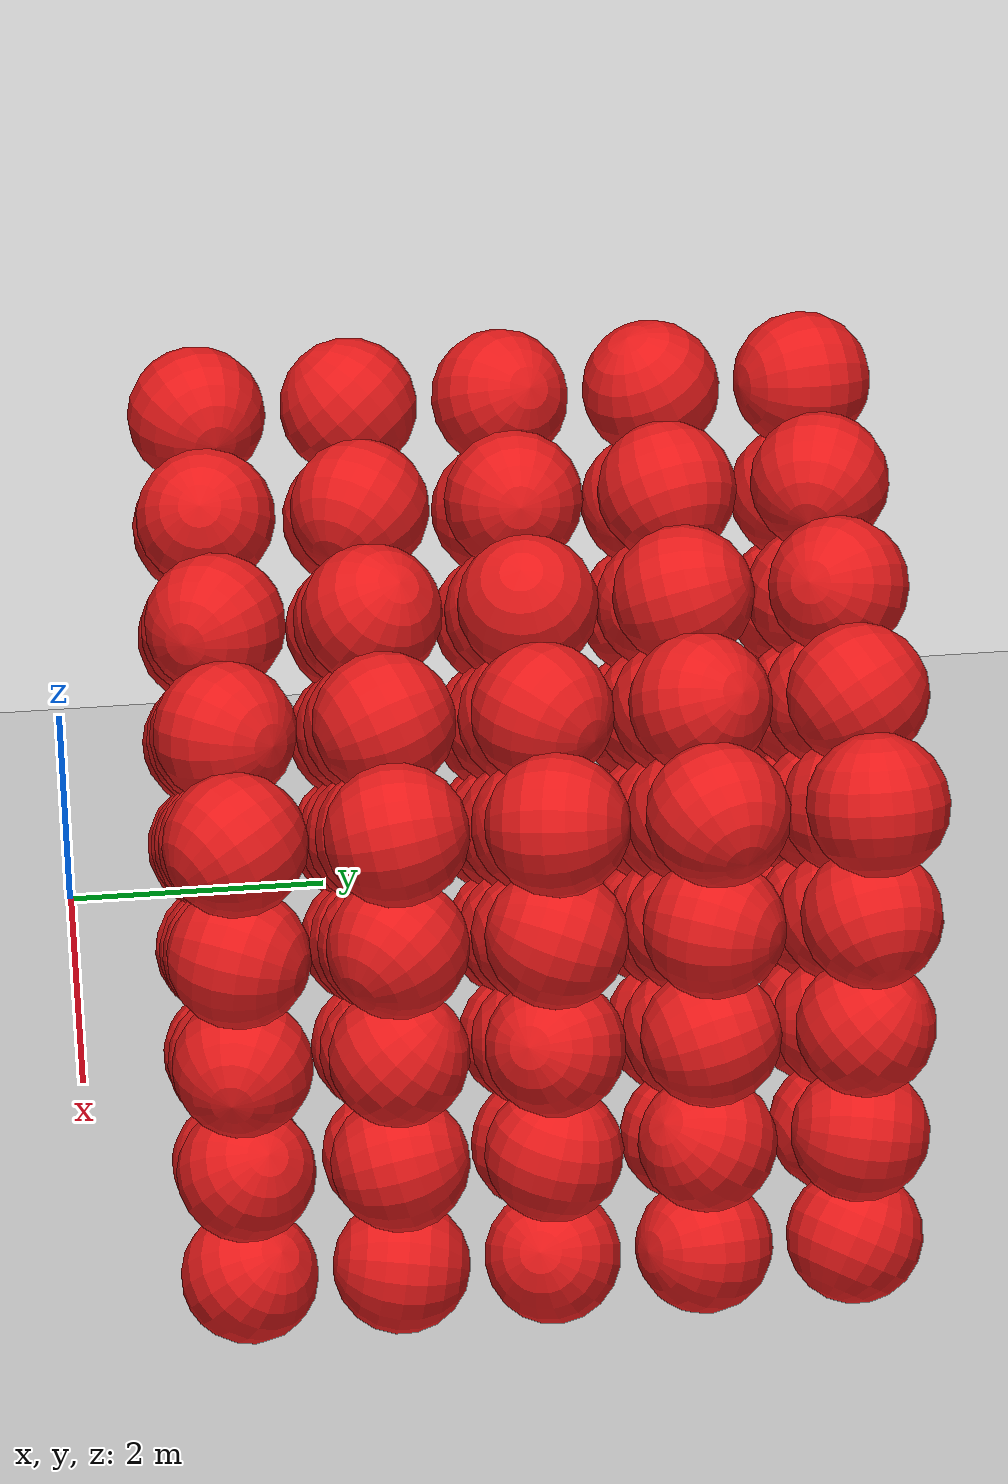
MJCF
<mujoco model="thousand">
    <compiler angle="degree"/>

    <option timestep="0.01" iterations="50" solver="PGS" jacobian="sparse" cone="elliptic" tolerance="1e-10"/>

    <size njmax="5000" nconmax="2000" nstack="1000000000"/>

    <default>
        <geom solimp=".9 .9 .01"/>

        <default class="object5">
			<geom type="sphere" material="geom" rgba=".9 .1 .1 1" size="0.500000"/>
        </default>
    </default>

    <asset>
        <texture type="skybox" builtin="gradient" width="128" height="128" rgb1=".4 .6 .8" rgb2="0 0 0"/>
        <texture name="texgeom" type="cube" builtin="flat" mark="cross" width="128" height="128"
            rgb1="0.6 0.6 0.6" rgb2="0.6 0.6 0.6" markrgb="1 1 1"/>
        <texture name="texplane" type="2d" builtin="checker" rgb1=".4 .4 .4" rgb2=".6 .6 .6"
            width="512" height="512"/>
        <material name='geom' texture="texgeom" texuniform="true"/>
        <material name='MatPlane' reflectance='0.3' texture="texplane" texrepeat="1 1" texuniform="true"/>
    </asset>

    <visual>
        <quality shadowsize="4096" offsamples="8"/>
        <map znear="0.1" force="0.05"/>
    </visual>

    <statistic extent="4"/>

    <worldbody>
        <light directional="true" diffuse=".8 .8 .8" pos="0 0 10" dir="0 0 -10"/>

        <geom pos="0 0 0" type="plane" size="200 200 5" rgba=".7 .7 .7 1" material="MatPlane"/>
		<body pos="1.100815 1.100906 1.601127" quat="0.654066 0.209426 -0.636794 -0.350473"><inertial pos="0 0 0" mass="1500.000000" diaginertia="150.000000 150.000000 150.000000"/> <freejoint/> <geom class="object5"/> </body>
		<body pos="1.100547 1.100958 2.701965" quat="-0.462558 0.635761 0.617623 -0.019757"><inertial pos="0 0 0" mass="1500.000000" diaginertia="150.000000 150.000000 150.000000"/> <freejoint/> <geom class="object5"/> </body>
		<body pos="1.100800 1.100142 3.801422" quat="0.591732 0.415910 0.654013 0.221672"><inertial pos="0 0 0" mass="1500.000000" diaginertia="150.000000 150.000000 150.000000"/> <freejoint/> <geom class="object5"/> </body>
		<body pos="1.100036 1.100849 4.901934" quat="0.434643 0.626764 0.591242 -0.262079"><inertial pos="0 0 0" mass="1500.000000" diaginertia="150.000000 150.000000 150.000000"/> <freejoint/> <geom class="object5"/> </body>
		<body pos="1.100655 1.100171 6.001706" quat="-0.586490 -0.279457 -0.568528 -0.504688"><inertial pos="0 0 0" mass="1500.000000" diaginertia="150.000000 150.000000 150.000000"/> <freejoint/> <geom class="object5"/> </body>
		<body pos="1.100823 2.200695 1.601317" quat="0.680889 -0.704076 -0.092639 -0.179124"><inertial pos="0 0 0" mass="1500.000000" diaginertia="150.000000 150.000000 150.000000"/> <freejoint/> <geom class="object5"/> </body>
		<body pos="1.100766 2.200795 2.701187" quat="-0.039164 -0.208198 0.559823 0.801073"><inertial pos="0 0 0" mass="1500.000000" diaginertia="150.000000 150.000000 150.000000"/> <freejoint/> <geom class="object5"/> </body>
		<body pos="1.100755 2.200276 3.801680" quat="0.291523 -0.634157 -0.716135 -0.003075"><inertial pos="0 0 0" mass="1500.000000" diaginertia="150.000000 150.000000 150.000000"/> <freejoint/> <geom class="object5"/> </body>
		<body pos="1.100960 2.200340 4.901585" quat="-0.618459 0.562654 -0.548408 0.013339"><inertial pos="0 0 0" mass="1500.000000" diaginertia="150.000000 150.000000 150.000000"/> <freejoint/> <geom class="object5"/> </body>
		<body pos="1.100699 2.200891 6.001959" quat="0.084177 -0.644268 -0.625246 -0.432319"><inertial pos="0 0 0" mass="1500.000000" diaginertia="150.000000 150.000000 150.000000"/> <freejoint/> <geom class="object5"/> </body>
		<body pos="1.100841 3.300254 1.601814" quat="-0.424750 0.710906 -0.248443 -0.502470"><inertial pos="0 0 0" mass="1500.000000" diaginertia="150.000000 150.000000 150.000000"/> <freejoint/> <geom class="object5"/> </body>
		<body pos="1.100251 3.300616 2.701473" quat="-0.394776 0.880428 0.226912 0.132328"><inertial pos="0 0 0" mass="1500.000000" diaginertia="150.000000 150.000000 150.000000"/> <freejoint/> <geom class="object5"/> </body>
		<body pos="1.100917 3.300286 3.801757" quat="0.494597 -0.233048 0.132205 -0.826792"><inertial pos="0 0 0" mass="1500.000000" diaginertia="150.000000 150.000000 150.000000"/> <freejoint/> <geom class="object5"/> </body>
		<body pos="1.100054 3.300531 4.901779" quat="0.754364 -0.643269 0.119624 -0.053203"><inertial pos="0 0 0" mass="1500.000000" diaginertia="150.000000 150.000000 150.000000"/> <freejoint/> <geom class="object5"/> </body>
		<body pos="1.100012 3.300337 6.001162" quat="0.607259 -0.389560 0.058878 -0.689937"><inertial pos="0 0 0" mass="1500.000000" diaginertia="150.000000 150.000000 150.000000"/> <freejoint/> <geom class="object5"/> </body>
		<body pos="1.100602 4.400263 1.601654" quat="0.362116 0.474909 -0.094653 -0.796476"><inertial pos="0 0 0" mass="1500.000000" diaginertia="150.000000 150.000000 150.000000"/> <freejoint/> <geom class="object5"/> </body>
		<body pos="1.100229 4.400913 2.701152" quat="0.446823 0.052583 0.680395 -0.578487"><inertial pos="0 0 0" mass="1500.000000" diaginertia="150.000000 150.000000 150.000000"/> <freejoint/> <geom class="object5"/> </body>
		<body pos="1.100443 4.400107 3.801962" quat="-0.663395 0.368161 0.424933 0.493757"><inertial pos="0 0 0" mass="1500.000000" diaginertia="150.000000 150.000000 150.000000"/> <freejoint/> <geom class="object5"/> </body>
		<body pos="1.100084 4.400400 4.901260" quat="0.496951 -0.113587 0.680083 -0.526901"><inertial pos="0 0 0" mass="1500.000000" diaginertia="150.000000 150.000000 150.000000"/> <freejoint/> <geom class="object5"/> </body>
		<body pos="1.100264 4.400146 6.001136" quat="0.709034 0.153031 0.095731 -0.681680"><inertial pos="0 0 0" mass="1500.000000" diaginertia="150.000000 150.000000 150.000000"/> <freejoint/> <geom class="object5"/> </body>
		<body pos="1.100853 5.500622 1.601351" quat="0.026122 -0.193591 -0.836006 -0.512770"><inertial pos="0 0 0" mass="1500.000000" diaginertia="150.000000 150.000000 150.000000"/> <freejoint/> <geom class="object5"/> </body>
		<body pos="1.100123 5.500184 2.701240" quat="-0.109614 -0.596669 0.533564 0.589305"><inertial pos="0 0 0" mass="1500.000000" diaginertia="150.000000 150.000000 150.000000"/> <freejoint/> <geom class="object5"/> </body>
		<body pos="1.100491 5.500489 3.801338" quat="0.627198 -0.204993 -0.609550 0.439375"><inertial pos="0 0 0" mass="1500.000000" diaginertia="150.000000 150.000000 150.000000"/> <freejoint/> <geom class="object5"/> </body>
		<body pos="1.100390 5.500242 4.901404" quat="-0.481724 -0.439324 0.527689 0.544501"><inertial pos="0 0 0" mass="1500.000000" diaginertia="150.000000 150.000000 150.000000"/> <freejoint/> <geom class="object5"/> </body>
		<body pos="1.100575 5.500060 6.001235" quat="-0.194772 0.426034 -0.642773 -0.606137"><inertial pos="0 0 0" mass="1500.000000" diaginertia="150.000000 150.000000 150.000000"/> <freejoint/> <geom class="object5"/> </body>
		<body pos="2.200169 1.100649 1.601732" quat="0.566862 -0.188293 0.180361 -0.781463"><inertial pos="0 0 0" mass="1500.000000" diaginertia="150.000000 150.000000 150.000000"/> <freejoint/> <geom class="object5"/> </body>
		<body pos="2.200745 1.100189 2.701687" quat="-0.687745 -0.285789 0.272975 0.608947"><inertial pos="0 0 0" mass="1500.000000" diaginertia="150.000000 150.000000 150.000000"/> <freejoint/> <geom class="object5"/> </body>
		<body pos="2.200081 1.100929 3.801776" quat="-0.062529 -0.303647 -0.251927 -0.916745"><inertial pos="0 0 0" mass="1500.000000" diaginertia="150.000000 150.000000 150.000000"/> <freejoint/> <geom class="object5"/> </body>
		<body pos="2.200509 1.100511 4.901818" quat="0.629196 0.307987 -0.259058 0.664940"><inertial pos="0 0 0" mass="1500.000000" diaginertia="150.000000 150.000000 150.000000"/> <freejoint/> <geom class="object5"/> </body>
		<body pos="2.200533 1.100351 6.001939" quat="0.921535 0.122946 0.300219 0.213369"><inertial pos="0 0 0" mass="1500.000000" diaginertia="150.000000 150.000000 150.000000"/> <freejoint/> <geom class="object5"/> </body>
		<body pos="2.200208 2.200301 1.601471" quat="-0.449516 0.574269 -0.509099 -0.457132"><inertial pos="0 0 0" mass="1500.000000" diaginertia="150.000000 150.000000 150.000000"/> <freejoint/> <geom class="object5"/> </body>
		<body pos="2.200171 2.200228 2.701436" quat="-0.334374 0.749439 -0.123542 -0.557918"><inertial pos="0 0 0" mass="1500.000000" diaginertia="150.000000 150.000000 150.000000"/> <freejoint/> <geom class="object5"/> </body>
		<body pos="2.200905 2.200980 3.801439" quat="-0.816036 -0.507683 -0.191544 0.199132"><inertial pos="0 0 0" mass="1500.000000" diaginertia="150.000000 150.000000 150.000000"/> <freejoint/> <geom class="object5"/> </body>
		<body pos="2.200262 2.200603 4.901711" quat="-0.509741 -0.700865 -0.372476 -0.331986"><inertial pos="0 0 0" mass="1500.000000" diaginertia="150.000000 150.000000 150.000000"/> <freejoint/> <geom class="object5"/> </body>
		<body pos="2.200424 2.200508 6.001086" quat="-0.319522 0.404942 -0.633319 0.576918"><inertial pos="0 0 0" mass="1500.000000" diaginertia="150.000000 150.000000 150.000000"/> <freejoint/> <geom class="object5"/> </body>
		<body pos="2.200730 3.300489 1.601579" quat="-0.490092 -0.076767 0.863882 0.087315"><inertial pos="0 0 0" mass="1500.000000" diaginertia="150.000000 150.000000 150.000000"/> <freejoint/> <geom class="object5"/> </body>
		<body pos="2.200521 3.300232 2.701489" quat="0.450100 0.649919 -0.379080 -0.480951"><inertial pos="0 0 0" mass="1500.000000" diaginertia="150.000000 150.000000 150.000000"/> <freejoint/> <geom class="object5"/> </body>
		<body pos="2.200988 3.300038 3.801885" quat="0.598861 0.429176 -0.581474 -0.345053"><inertial pos="0 0 0" mass="1500.000000" diaginertia="150.000000 150.000000 150.000000"/> <freejoint/> <geom class="object5"/> </body>
		<body pos="2.200335 3.300680 4.901137" quat="0.464071 -0.824899 0.322538 -0.012221"><inertial pos="0 0 0" mass="1500.000000" diaginertia="150.000000 150.000000 150.000000"/> <freejoint/> <geom class="object5"/> </body>
		<body pos="2.200779 3.300715 6.001904" quat="0.700829 -0.297305 0.356303 -0.541753"><inertial pos="0 0 0" mass="1500.000000" diaginertia="150.000000 150.000000 150.000000"/> <freejoint/> <geom class="object5"/> </body>
		<body pos="2.200031 4.400744 1.601500" quat="-0.046047 0.928205 0.251972 0.269861"><inertial pos="0 0 0" mass="1500.000000" diaginertia="150.000000 150.000000 150.000000"/> <freejoint/> <geom class="object5"/> </body>
		<body pos="2.200859 4.400805 2.701577" quat="-0.431603 -0.354002 0.526116 -0.641564"><inertial pos="0 0 0" mass="1500.000000" diaginertia="150.000000 150.000000 150.000000"/> <freejoint/> <geom class="object5"/> </body>
		<body pos="2.200490 4.400168 3.801979" quat="0.434151 0.000963 -0.059014 -0.898904"><inertial pos="0 0 0" mass="1500.000000" diaginertia="150.000000 150.000000 150.000000"/> <freejoint/> <geom class="object5"/> </body>
		<body pos="2.200682 4.400042 4.901071" quat="0.035828 -0.667360 0.526495 0.525500"><inertial pos="0 0 0" mass="1500.000000" diaginertia="150.000000 150.000000 150.000000"/> <freejoint/> <geom class="object5"/> </body>
		<body pos="2.200722 4.400150 6.001660" quat="0.032058 0.815416 0.256864 0.517775"><inertial pos="0 0 0" mass="1500.000000" diaginertia="150.000000 150.000000 150.000000"/> <freejoint/> <geom class="object5"/> </body>
		<body pos="2.200454 5.500432 1.601825" quat="-0.637706 -0.561614 -0.500041 -0.166974"><inertial pos="0 0 0" mass="1500.000000" diaginertia="150.000000 150.000000 150.000000"/> <freejoint/> <geom class="object5"/> </body>
		<body pos="2.200831 5.500803 2.701060" quat="-0.489255 0.130523 -0.404064 0.761791"><inertial pos="0 0 0" mass="1500.000000" diaginertia="150.000000 150.000000 150.000000"/> <freejoint/> <geom class="object5"/> </body>
		<body pos="2.200628 5.500292 3.801432" quat="-0.565181 0.564657 -0.388246 -0.459346"><inertial pos="0 0 0" mass="1500.000000" diaginertia="150.000000 150.000000 150.000000"/> <freejoint/> <geom class="object5"/> </body>
		<body pos="2.200372 5.500198 4.901490" quat="-0.206098 0.579915 0.539727 -0.574384"><inertial pos="0 0 0" mass="1500.000000" diaginertia="150.000000 150.000000 150.000000"/> <freejoint/> <geom class="object5"/> </body>
		<body pos="2.200738 5.500269 6.001423" quat="0.072299 0.668658 -0.124230 0.729546"><inertial pos="0 0 0" mass="1500.000000" diaginertia="150.000000 150.000000 150.000000"/> <freejoint/> <geom class="object5"/> </body>
		<body pos="3.300301 1.100701 1.601666" quat="0.094313 0.477526 0.401410 -0.775850"><inertial pos="0 0 0" mass="1500.000000" diaginertia="150.000000 150.000000 150.000000"/> <freejoint/> <geom class="object5"/> </body>
		<body pos="3.300128 1.100999 2.701171" quat="-0.742137 0.097173 0.606329 0.268617"><inertial pos="0 0 0" mass="1500.000000" diaginertia="150.000000 150.000000 150.000000"/> <freejoint/> <geom class="object5"/> </body>
		<body pos="3.300190 1.100369 3.801461" quat="0.682926 -0.487192 0.504105 0.205265"><inertial pos="0 0 0" mass="1500.000000" diaginertia="150.000000 150.000000 150.000000"/> <freejoint/> <geom class="object5"/> </body>
		<body pos="3.300376 1.100191 4.901428" quat="-0.037713 -0.795863 0.187765 -0.574390"><inertial pos="0 0 0" mass="1500.000000" diaginertia="150.000000 150.000000 150.000000"/> <freejoint/> <geom class="object5"/> </body>
		<body pos="3.300385 1.100583 6.001252" quat="-0.448890 0.250817 -0.502784 0.694836"><inertial pos="0 0 0" mass="1500.000000" diaginertia="150.000000 150.000000 150.000000"/> <freejoint/> <geom class="object5"/> </body>
		<body pos="3.300983 2.200730 1.601344" quat="0.122610 -0.572045 0.592576 0.553702"><inertial pos="0 0 0" mass="1500.000000" diaginertia="150.000000 150.000000 150.000000"/> <freejoint/> <geom class="object5"/> </body>
		<body pos="3.300818 2.200261 2.701594" quat="-0.771298 -0.120731 -0.302520 -0.546813"><inertial pos="0 0 0" mass="1500.000000" diaginertia="150.000000 150.000000 150.000000"/> <freejoint/> <geom class="object5"/> </body>
		<body pos="3.300179 2.200423 3.801094" quat="0.330431 -0.097515 0.657180 0.670389"><inertial pos="0 0 0" mass="1500.000000" diaginertia="150.000000 150.000000 150.000000"/> <freejoint/> <geom class="object5"/> </body>
		<body pos="3.300639 2.200034 4.901069" quat="-0.702822 0.120244 0.601706 -0.359907"><inertial pos="0 0 0" mass="1500.000000" diaginertia="150.000000 150.000000 150.000000"/> <freejoint/> <geom class="object5"/> </body>
		<body pos="3.300820 2.200718 6.001969" quat="0.070171 -0.391578 -0.883175 0.248487"><inertial pos="0 0 0" mass="1500.000000" diaginertia="150.000000 150.000000 150.000000"/> <freejoint/> <geom class="object5"/> </body>
		<body pos="3.300779 3.300423 1.601091" quat="-0.491190 -0.728478 -0.460620 -0.126021"><inertial pos="0 0 0" mass="1500.000000" diaginertia="150.000000 150.000000 150.000000"/> <freejoint/> <geom class="object5"/> </body>
		<body pos="3.300527 3.300457 2.701875" quat="0.027672 0.680027 0.211093 0.701596"><inertial pos="0 0 0" mass="1500.000000" diaginertia="150.000000 150.000000 150.000000"/> <freejoint/> <geom class="object5"/> </body>
		<body pos="3.300241 3.300676 3.801289" quat="0.306431 0.348046 -0.770513 -0.437348"><inertial pos="0 0 0" mass="1500.000000" diaginertia="150.000000 150.000000 150.000000"/> <freejoint/> <geom class="object5"/> </body>
		<body pos="3.300224 3.300668 4.901844" quat="-0.253333 0.456898 0.285573 -0.803440"><inertial pos="0 0 0" mass="1500.000000" diaginertia="150.000000 150.000000 150.000000"/> <freejoint/> <geom class="object5"/> </body>
		<body pos="3.300602 3.300387 6.001916" quat="-0.983040 -0.073998 -0.149079 -0.077019"><inertial pos="0 0 0" mass="1500.000000" diaginertia="150.000000 150.000000 150.000000"/> <freejoint/> <geom class="object5"/> </body>
		<body pos="3.300770 4.400322 1.601785" quat="-0.047052 -0.762613 -0.532449 0.364287"><inertial pos="0 0 0" mass="1500.000000" diaginertia="150.000000 150.000000 150.000000"/> <freejoint/> <geom class="object5"/> </body>
		<body pos="3.300473 4.400153 2.701341" quat="0.224153 -0.643417 0.497666 -0.536748"><inertial pos="0 0 0" mass="1500.000000" diaginertia="150.000000 150.000000 150.000000"/> <freejoint/> <geom class="object5"/> </body>
		<body pos="3.300917 4.400269 3.801766" quat="-0.554650 -0.378573 -0.728433 0.135767"><inertial pos="0 0 0" mass="1500.000000" diaginertia="150.000000 150.000000 150.000000"/> <freejoint/> <geom class="object5"/> </body>
		<body pos="3.300683 4.400547 4.901426" quat="0.473291 0.483694 0.586579 0.444928"><inertial pos="0 0 0" mass="1500.000000" diaginertia="150.000000 150.000000 150.000000"/> <freejoint/> <geom class="object5"/> </body>
		<body pos="3.300945 4.400209 6.001709" quat="-0.551879 -0.796329 0.224510 -0.104326"><inertial pos="0 0 0" mass="1500.000000" diaginertia="150.000000 150.000000 150.000000"/> <freejoint/> <geom class="object5"/> </body>
		<body pos="3.300459 5.500662 1.601770" quat="-0.360500 0.389930 -0.201792 0.822967"><inertial pos="0 0 0" mass="1500.000000" diaginertia="150.000000 150.000000 150.000000"/> <freejoint/> <geom class="object5"/> </body>
		<body pos="3.300833 5.500256 2.701613" quat="0.183635 0.090957 0.825955 -0.525170"><inertial pos="0 0 0" mass="1500.000000" diaginertia="150.000000 150.000000 150.000000"/> <freejoint/> <geom class="object5"/> </body>
		<body pos="3.300318 5.500119 3.801940" quat="0.701784 -0.099019 0.671722 0.215600"><inertial pos="0 0 0" mass="1500.000000" diaginertia="150.000000 150.000000 150.000000"/> <freejoint/> <geom class="object5"/> </body>
		<body pos="3.300647 5.500544 4.901721" quat="0.032510 0.713503 -0.406569 -0.569701"><inertial pos="0 0 0" mass="1500.000000" diaginertia="150.000000 150.000000 150.000000"/> <freejoint/> <geom class="object5"/> </body>
		<body pos="3.300110 5.500064 6.001405" quat="-0.158226 -0.411245 0.807587 0.391976"><inertial pos="0 0 0" mass="1500.000000" diaginertia="150.000000 150.000000 150.000000"/> <freejoint/> <geom class="object5"/> </body>
		<body pos="4.400772 1.100933 1.601973" quat="-0.470330 -0.551507 0.299735 -0.620313"><inertial pos="0 0 0" mass="1500.000000" diaginertia="150.000000 150.000000 150.000000"/> <freejoint/> <geom class="object5"/> </body>
		<body pos="4.400525 1.100530 2.701861" quat="-0.048097 -0.338319 0.544363 0.766091"><inertial pos="0 0 0" mass="1500.000000" diaginertia="150.000000 150.000000 150.000000"/> <freejoint/> <geom class="object5"/> </body>
		<body pos="4.400520 1.100348 3.801150" quat="0.148413 -0.410033 -0.785308 0.439475"><inertial pos="0 0 0" mass="1500.000000" diaginertia="150.000000 150.000000 150.000000"/> <freejoint/> <geom class="object5"/> </body>
		<body pos="4.400243 1.100442 4.901688" quat="-0.405695 0.681117 -0.303446 0.528593"><inertial pos="0 0 0" mass="1500.000000" diaginertia="150.000000 150.000000 150.000000"/> <freejoint/> <geom class="object5"/> </body>
		<body pos="4.400704 1.100442 6.001020" quat="-0.399907 -0.178957 -0.543155 -0.716263"><inertial pos="0 0 0" mass="1500.000000" diaginertia="150.000000 150.000000 150.000000"/> <freejoint/> <geom class="object5"/> </body>
		<body pos="4.400822 2.200430 1.601888" quat="-0.249580 0.617234 -0.236716 0.707600"><inertial pos="0 0 0" mass="1500.000000" diaginertia="150.000000 150.000000 150.000000"/> <freejoint/> <geom class="object5"/> </body>
		<body pos="4.400755 2.200377 2.701216" quat="0.494225 0.764641 -0.293455 0.291463"><inertial pos="0 0 0" mass="1500.000000" diaginertia="150.000000 150.000000 150.000000"/> <freejoint/> <geom class="object5"/> </body>
		<body pos="4.400439 2.200834 3.801769" quat="-0.479314 0.521425 0.705650 0.020777"><inertial pos="0 0 0" mass="1500.000000" diaginertia="150.000000 150.000000 150.000000"/> <freejoint/> <geom class="object5"/> </body>
		<body pos="4.400884 2.200588 4.901155" quat="-0.581287 -0.180204 0.481678 0.630570"><inertial pos="0 0 0" mass="1500.000000" diaginertia="150.000000 150.000000 150.000000"/> <freejoint/> <geom class="object5"/> </body>
		<body pos="4.400790 2.200319 6.001534" quat="-0.589946 -0.558646 -0.523273 0.257030"><inertial pos="0 0 0" mass="1500.000000" diaginertia="150.000000 150.000000 150.000000"/> <freejoint/> <geom class="object5"/> </body>
		<body pos="4.400495 3.300190 1.601495" quat="-0.525961 -0.664222 0.523455 0.090388"><inertial pos="0 0 0" mass="1500.000000" diaginertia="150.000000 150.000000 150.000000"/> <freejoint/> <geom class="object5"/> </body>
		<body pos="4.400930 3.300697 2.701583" quat="0.368731 0.443105 0.571586 -0.583939"><inertial pos="0 0 0" mass="1500.000000" diaginertia="150.000000 150.000000 150.000000"/> <freejoint/> <geom class="object5"/> </body>
		<body pos="4.400865 3.300613 3.801990" quat="0.067925 -0.050248 0.739483 -0.667852"><inertial pos="0 0 0" mass="1500.000000" diaginertia="150.000000 150.000000 150.000000"/> <freejoint/> <geom class="object5"/> </body>
		<body pos="4.400498 3.300901 4.901575" quat="0.693646 0.479555 0.172794 -0.508945"><inertial pos="0 0 0" mass="1500.000000" diaginertia="150.000000 150.000000 150.000000"/> <freejoint/> <geom class="object5"/> </body>
		<body pos="4.400666 3.300083 6.001626" quat="0.236277 0.337290 0.573648 0.708051"><inertial pos="0 0 0" mass="1500.000000" diaginertia="150.000000 150.000000 150.000000"/> <freejoint/> <geom class="object5"/> </body>
		<body pos="4.400769 4.400581 1.601928" quat="0.111600 -0.673051 -0.528306 0.505412"><inertial pos="0 0 0" mass="1500.000000" diaginertia="150.000000 150.000000 150.000000"/> <freejoint/> <geom class="object5"/> </body>
		<body pos="4.400484 4.400845 2.701209" quat="0.104209 0.258839 -0.932674 0.228607"><inertial pos="0 0 0" mass="1500.000000" diaginertia="150.000000 150.000000 150.000000"/> <freejoint/> <geom class="object5"/> </body>
		<body pos="4.400362 4.400050 3.801490" quat="-0.459246 -0.562937 -0.439854 -0.527942"><inertial pos="0 0 0" mass="1500.000000" diaginertia="150.000000 150.000000 150.000000"/> <freejoint/> <geom class="object5"/> </body>
		<body pos="4.400189 4.400043 4.901635" quat="-0.738857 0.130734 0.661053 -0.002994"><inertial pos="0 0 0" mass="1500.000000" diaginertia="150.000000 150.000000 150.000000"/> <freejoint/> <geom class="object5"/> </body>
		<body pos="4.400536 4.400445 6.001124" quat="-0.017119 0.626681 0.663836 -0.407798"><inertial pos="0 0 0" mass="1500.000000" diaginertia="150.000000 150.000000 150.000000"/> <freejoint/> <geom class="object5"/> </body>
		<body pos="4.400208 5.500565 1.601640" quat="-0.121201 -0.429499 0.654323 -0.610494"><inertial pos="0 0 0" mass="1500.000000" diaginertia="150.000000 150.000000 150.000000"/> <freejoint/> <geom class="object5"/> </body>
		<body pos="4.400106 5.500142 2.701166" quat="0.189686 0.115591 -0.702427 0.676206"><inertial pos="0 0 0" mass="1500.000000" diaginertia="150.000000 150.000000 150.000000"/> <freejoint/> <geom class="object5"/> </body>
		<body pos="4.400729 5.500738 3.801063" quat="0.436424 0.525980 0.586513 0.434605"><inertial pos="0 0 0" mass="1500.000000" diaginertia="150.000000 150.000000 150.000000"/> <freejoint/> <geom class="object5"/> </body>
		<body pos="4.400786 5.500513 4.901178" quat="-0.135855 -0.490407 -0.628448 0.588300"><inertial pos="0 0 0" mass="1500.000000" diaginertia="150.000000 150.000000 150.000000"/> <freejoint/> <geom class="object5"/> </body>
		<body pos="4.400301 5.500296 6.001333" quat="-0.054467 0.245111 -0.785245 0.565990"><inertial pos="0 0 0" mass="1500.000000" diaginertia="150.000000 150.000000 150.000000"/> <freejoint/> <geom class="object5"/> </body>
		<body pos="5.500559 1.100854 1.601348" quat="-0.093618 -0.773184 -0.560066 0.282395"><inertial pos="0 0 0" mass="1500.000000" diaginertia="150.000000 150.000000 150.000000"/> <freejoint/> <geom class="object5"/> </body>
		<body pos="5.500331 1.100898 2.701118" quat="0.669344 0.054793 0.283566 0.684519"><inertial pos="0 0 0" mass="1500.000000" diaginertia="150.000000 150.000000 150.000000"/> <freejoint/> <geom class="object5"/> </body>
		<body pos="5.500288 1.100415 3.801465" quat="0.400506 0.482816 -0.606590 -0.488398"><inertial pos="0 0 0" mass="1500.000000" diaginertia="150.000000 150.000000 150.000000"/> <freejoint/> <geom class="object5"/> </body>
		<body pos="5.500360 1.100057 4.901522" quat="-0.265939 -0.525445 -0.471532 0.656385"><inertial pos="0 0 0" mass="1500.000000" diaginertia="150.000000 150.000000 150.000000"/> <freejoint/> <geom class="object5"/> </body>
		<body pos="5.500675 1.100468 6.001912" quat="-0.752731 0.466756 0.449119 0.117592"><inertial pos="0 0 0" mass="1500.000000" diaginertia="150.000000 150.000000 150.000000"/> <freejoint/> <geom class="object5"/> </body>
		<body pos="5.500184 2.200597 1.601300" quat="-0.490637 -0.385398 0.529613 -0.574677"><inertial pos="0 0 0" mass="1500.000000" diaginertia="150.000000 150.000000 150.000000"/> <freejoint/> <geom class="object5"/> </body>
		<body pos="5.500242 2.200054 2.701442" quat="-0.602763 0.491892 -0.375667 -0.503581"><inertial pos="0 0 0" mass="1500.000000" diaginertia="150.000000 150.000000 150.000000"/> <freejoint/> <geom class="object5"/> </body>
		<body pos="5.500307 2.200456 3.801102" quat="0.696093 -0.235933 -0.284757 -0.615389"><inertial pos="0 0 0" mass="1500.000000" diaginertia="150.000000 150.000000 150.000000"/> <freejoint/> <geom class="object5"/> </body>
		<body pos="5.500298 2.200046 4.901505" quat="0.398955 0.200022 -0.625855 -0.639634"><inertial pos="0 0 0" mass="1500.000000" diaginertia="150.000000 150.000000 150.000000"/> <freejoint/> <geom class="object5"/> </body>
		<body pos="5.500777 2.200905 6.001534" quat="-0.682893 0.569259 -0.282879 -0.359974"><inertial pos="0 0 0" mass="1500.000000" diaginertia="150.000000 150.000000 150.000000"/> <freejoint/> <geom class="object5"/> </body>
		<body pos="5.500746 3.300010 1.601048" quat="0.552555 0.340478 0.085894 0.755896"><inertial pos="0 0 0" mass="1500.000000" diaginertia="150.000000 150.000000 150.000000"/> <freejoint/> <geom class="object5"/> </body>
		<body pos="5.500707 3.300781 2.701288" quat="0.390418 0.114915 -0.209836 -0.889009"><inertial pos="0 0 0" mass="1500.000000" diaginertia="150.000000 150.000000 150.000000"/> <freejoint/> <geom class="object5"/> </body>
		<body pos="5.500780 3.300338 3.801608" quat="0.404742 -0.662989 -0.624277 0.083111"><inertial pos="0 0 0" mass="1500.000000" diaginertia="150.000000 150.000000 150.000000"/> <freejoint/> <geom class="object5"/> </body>
		<body pos="5.500485 3.300890 4.901799" quat="0.300547 -0.575426 -0.547783 -0.527722"><inertial pos="0 0 0" mass="1500.000000" diaginertia="150.000000 150.000000 150.000000"/> <freejoint/> <geom class="object5"/> </body>
		<body pos="5.500798 3.300943 6.001684" quat="-0.529333 0.320440 -0.560596 -0.550324"><inertial pos="0 0 0" mass="1500.000000" diaginertia="150.000000 150.000000 150.000000"/> <freejoint/> <geom class="object5"/> </body>
		<body pos="5.500641 4.400329 1.601654" quat="0.561416 0.187459 0.540912 -0.597566"><inertial pos="0 0 0" mass="1500.000000" diaginertia="150.000000 150.000000 150.000000"/> <freejoint/> <geom class="object5"/> </body>
		<body pos="5.500735 4.400971 2.701867" quat="-0.843918 -0.272416 -0.266783 0.377385"><inertial pos="0 0 0" mass="1500.000000" diaginertia="150.000000 150.000000 150.000000"/> <freejoint/> <geom class="object5"/> </body>
		<body pos="5.500598 4.400789 3.801368" quat="-0.454780 -0.639434 0.420686 -0.455327"><inertial pos="0 0 0" mass="1500.000000" diaginertia="150.000000 150.000000 150.000000"/> <freejoint/> <geom class="object5"/> </body>
		<body pos="5.500388 4.400552 4.901229" quat="0.301875 -0.033007 -0.740444 0.599604"><inertial pos="0 0 0" mass="1500.000000" diaginertia="150.000000 150.000000 150.000000"/> <freejoint/> <geom class="object5"/> </body>
		<body pos="5.500101 4.400294 6.001237" quat="0.053504 -0.707965 -0.164096 -0.684833"><inertial pos="0 0 0" mass="1500.000000" diaginertia="150.000000 150.000000 150.000000"/> <freejoint/> <geom class="object5"/> </body>
		<body pos="5.500112 5.500784 1.601292" quat="0.199659 0.895618 -0.130200 0.375571"><inertial pos="0 0 0" mass="1500.000000" diaginertia="150.000000 150.000000 150.000000"/> <freejoint/> <geom class="object5"/> </body>
		<body pos="5.500758 5.500433 2.701655" quat="-0.555911 0.617899 -0.445218 -0.333083"><inertial pos="0 0 0" mass="1500.000000" diaginertia="150.000000 150.000000 150.000000"/> <freejoint/> <geom class="object5"/> </body>
		<body pos="5.500798 5.500488 3.801769" quat="-0.187824 -0.410099 -0.835809 0.312991"><inertial pos="0 0 0" mass="1500.000000" diaginertia="150.000000 150.000000 150.000000"/> <freejoint/> <geom class="object5"/> </body>
		<body pos="5.500430 5.500452 4.901610" quat="-0.754493 -0.315411 0.467019 0.336378"><inertial pos="0 0 0" mass="1500.000000" diaginertia="150.000000 150.000000 150.000000"/> <freejoint/> <geom class="object5"/> </body>
		<body pos="5.500125 5.500130 6.001092" quat="-0.867285 -0.135491 0.274140 0.392819"><inertial pos="0 0 0" mass="1500.000000" diaginertia="150.000000 150.000000 150.000000"/> <freejoint/> <geom class="object5"/> </body>

    </worldbody>
</mujoco>
